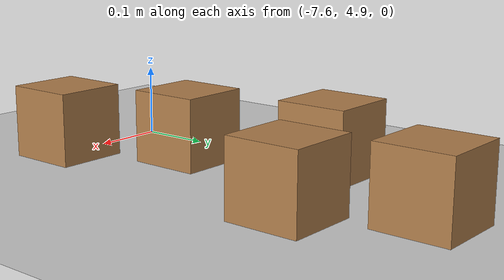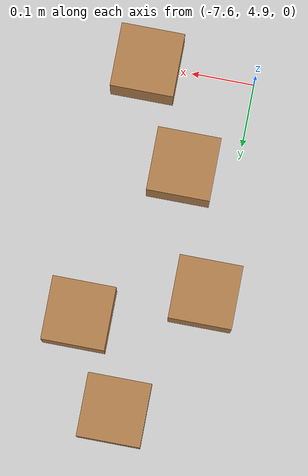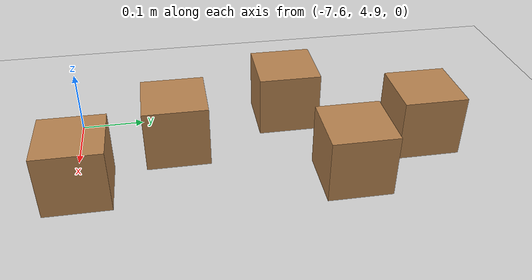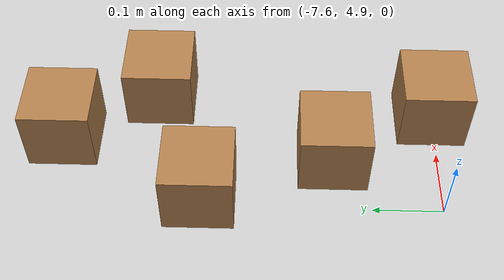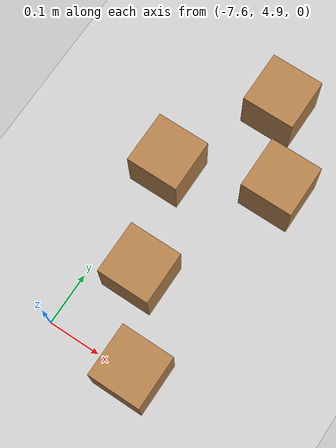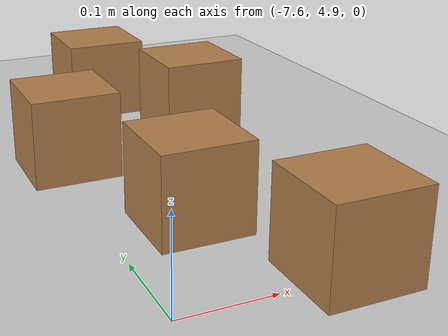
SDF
<sdf version="1.7">
 <world name="default">
  <model name="ground_plane">
   <static>1</static>
   <link name="link">
    <collision name="collision">
     <geometry><plane><normal>0 0 1</normal><size>100 100</size></plane></geometry>
     <surface>
      <contact><collide_bitmask>65535</collide_bitmask></contact>
      <friction><ode><mu>1.0</mu><mu2>1.0</mu2></ode></friction>
     </surface>
    </collision>
    <visual name="visual">
     <cast_shadows>0</cast_shadows>
     <geometry><plane><normal>0 0 1</normal><size>100 100</size></plane></geometry>
     <material>
      <script><uri>file://media/materials/scripts/gazebo.material</uri><name>Gazebo/Grey</name></script>
     </material>
    </visual>
   </link>
  </model>
  <model name="wood_cube_10cm_clone_2_clone_13">
   <link name="link">
    <pose>0 0 0.05 0 -0 0</pose>
    <inertial>
     <mass>0.5167</mass>
     <inertia>
      <ixx>0.000861167</ixx>
      <ixy>0</ixy>
      <ixz>0</ixz>
      <iyy>0.000861167</iyy>
      <iyz>0</iyz>
      <izz>0.000861167</izz>
     </inertia>
    </inertial>
    <collision name="collision">
     <geometry><box><size>0.1 0.1 0.1</size></box></geometry>
     <surface>
      <contact>
       <poissons_ratio>0.347</poissons_ratio>
       <elastic_modulus>8.8e+09</elastic_modulus>
       <ode><kp>100000</kp><kd>100</kd><max_vel>100</max_vel><min_depth>0.001</min_depth></ode>
      </contact>
      <friction>
       <torsional>
        <coefficient>1</coefficient>
        <use_patch_radius>0</use_patch_radius>
        <surface_radius>0.01</surface_radius>
       </torsional>
      </friction>
     </surface>
    </collision>
    <visual name="visual">
     <geometry><box><size>0.1 0.1 0.1</size></box></geometry>
     <material>
      <script><uri>file://media/materials/scripts/gazebo.material</uri><name>Gazebo/Wood</name></script>
     </material>
    </visual>
   </link>
   <pose>-7.3986 5.31269 -0.001013 0 -0 0</pose>
  </model>
  <model name="wood_cube_10cm_clone_2_clone_14">
   <link name="link">
    <pose>0 0 0.05 0 -0 0</pose>
    <inertial>
     <mass>0.5167</mass>
     <inertia>
      <ixx>0.000861167</ixx>
      <ixy>0</ixy>
      <ixz>0</ixz>
      <iyy>0.000861167</iyy>
      <iyz>0</iyz>
      <izz>0.000861167</izz>
     </inertia>
    </inertial>
    <collision name="collision">
     <geometry><box><size>0.1 0.1 0.1</size></box></geometry>
     <surface>
      <contact>
       <poissons_ratio>0.347</poissons_ratio>
       <elastic_modulus>8.8e+09</elastic_modulus>
       <ode><kp>100000</kp><kd>100</kd><max_vel>100</max_vel><min_depth>0.001</min_depth></ode>
      </contact>
      <friction>
       <torsional>
        <coefficient>1</coefficient>
        <use_patch_radius>0</use_patch_radius>
        <surface_radius>0.01</surface_radius>
       </torsional>
      </friction>
     </surface>
    </collision>
    <visual name="visual">
     <geometry><box><size>0.1 0.1 0.1</size></box></geometry>
     <material>
      <script><uri>file://media/materials/scripts/gazebo.material</uri><name>Gazebo/Wood</name></script>
     </material>
    </visual>
   </link>
   <pose>-7.42967 4.90556 -0.001013 0 -0 0</pose>
  </model>
  <model name="wood_cube_10cm_clone_2_clone_16">
   <link name="link">
    <pose>0 0 0.05 0 -0 0</pose>
    <inertial>
     <mass>0.5167</mass>
     <inertia>
      <ixx>0.000861167</ixx>
      <ixy>0</ixy>
      <ixz>0</ixz>
      <iyy>0.000861167</iyy>
      <iyz>0</iyz>
      <izz>0.000861167</izz>
     </inertia>
    </inertial>
    <collision name="collision">
     <geometry><box><size>0.1 0.1 0.1</size></box></geometry>
     <surface>
      <contact>
       <poissons_ratio>0.347</poissons_ratio>
       <elastic_modulus>8.8e+09</elastic_modulus>
       <ode><kp>100000</kp><kd>100</kd><max_vel>100</max_vel><min_depth>0.001</min_depth></ode>
      </contact>
      <friction>
       <torsional>
        <coefficient>1</coefficient>
        <use_patch_radius>0</use_patch_radius>
        <surface_radius>0.01</surface_radius>
       </torsional>
      </friction>
     </surface>
    </collision>
    <visual name="visual">
     <geometry><box><size>0.1 0.1 0.1</size></box></geometry>
     <material>
      <script><uri>file://media/materials/scripts/gazebo.material</uri><name>Gazebo/Wood</name></script>
     </material>
    </visual>
   </link>
   <pose>-7.5154 5.05494 -0.001013 0 -0 0</pose>
  </model>
  <model name="wood_cube_10cm_clone_2_clone_19">
   <link name="link">
    <pose>0 0 0.05 0 -0 0</pose>
    <inertial>
     <mass>0.5167</mass>
     <inertia>
      <ixx>0.000861167</ixx>
      <ixy>0</ixy>
      <ixz>0</ixz>
      <iyy>0.000861167</iyy>
      <iyz>0</iyz>
      <izz>0.000861167</izz>
     </inertia>
    </inertial>
    <collision name="collision">
     <geometry><box><size>0.1 0.1 0.1</size></box></geometry>
     <surface>
      <contact>
       <poissons_ratio>0.347</poissons_ratio>
       <elastic_modulus>8.8e+09</elastic_modulus>
       <ode><kp>100000</kp><kd>100</kd><max_vel>100</max_vel><min_depth>0.001</min_depth></ode>
      </contact>
      <friction>
       <torsional>
        <coefficient>1</coefficient>
        <use_patch_radius>0</use_patch_radius>
        <surface_radius>0.01</surface_radius>
       </torsional>
      </friction>
     </surface>
    </collision>
    <visual name="visual">
     <geometry><box><size>0.1 0.1 0.1</size></box></geometry>
     <material>
      <script><uri>file://media/materials/scripts/gazebo.material</uri><name>Gazebo/Wood</name></script>
     </material>
    </visual>
   </link>
   <pose>-7.58537 5.24407 -0.001013 0 -0 0</pose>
  </model>
  <model name="wood_cube_10cm_clone_2_clone_20">
   <link name="link">
    <pose>0 0 0.05 0 -0 0</pose>
    <inertial>
     <mass>0.5167</mass>
     <inertia>
      <ixx>0.000861167</ixx>
      <ixy>0</ixy>
      <ixz>0</ixz>
      <iyy>0.000861167</iyy>
      <iyz>0</iyz>
      <izz>0.000861167</izz>
     </inertia>
    </inertial>
    <collision name="collision">
     <geometry><box><size>0.1 0.1 0.1</size></box></geometry>
     <surface>
      <contact>
       <poissons_ratio>0.347</poissons_ratio>
       <elastic_modulus>8.8e+09</elastic_modulus>
       <ode><kp>100000</kp><kd>100</kd><max_vel>100</max_vel><min_depth>0.001</min_depth></ode>
      </contact>
      <friction>
       <torsional>
        <coefficient>1</coefficient>
        <use_patch_radius>0</use_patch_radius>
        <surface_radius>0.01</surface_radius>
       </torsional>
      </friction>
     </surface>
    </collision>
    <visual name="visual">
     <geometry><box><size>0.1 0.1 0.1</size></box></geometry>
     <material>
      <script><uri>file://media/materials/scripts/gazebo.material</uri><name>Gazebo/Wood</name></script>
     </material>
    </visual>
   </link>
   <pose>-7.48046 5.44898 -0.001013 0 -0 0</pose>
  </model>
 </world>
</sdf>
